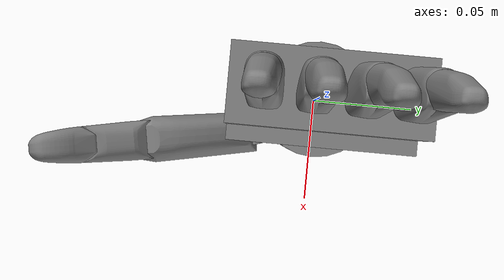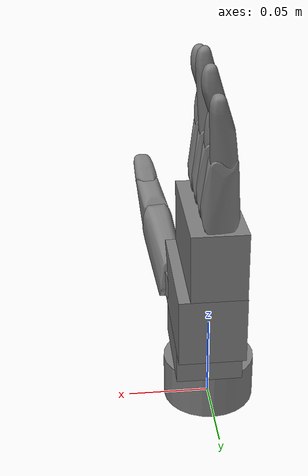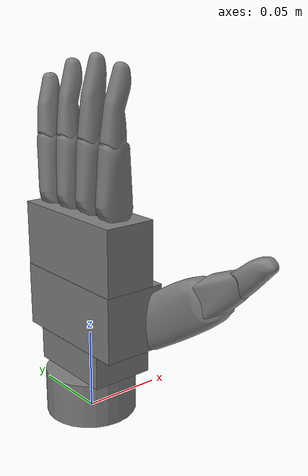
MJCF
<mujoco model="inspire_hand_left">
  <compiler angle="radian"/>

  <default>
    <joint damping="0.2" armature="1e-4" frictionloss="0.005"/>
  </default>

  <asset>
    <mesh name="left_thumb_proximal_base" content_type="model/obj" file="meshes/collision/left_thumb_proximal_base.obj"/>
    <mesh name="left_thumb_proximal" content_type="model/obj" file="meshes/collision/left_thumb_proximal.obj"/>
    <mesh name="left_thumb_intermediate" content_type="model/obj" file="meshes/collision/left_thumb_intermediate.obj"/>
    <mesh name="left_thumb_distal" content_type="model/obj" file="meshes/collision/left_thumb_distal.obj"/>
    <mesh name="left_index_proximal" content_type="model/obj" file="meshes/collision/left_index_proximal.obj"/>
    <mesh name="left_index_intermediate" content_type="model/obj" file="meshes/collision/left_index_intermediate.obj"/>
    <mesh name="left_middle_intermediate" content_type="model/obj" file="meshes/collision/left_middle_intermediate.obj"/>
    <mesh name="left_pinky_intermediate" content_type="model/obj" file="meshes/collision/left_pinky_intermediate.obj"/>
  </asset>

  <equality>
    <joint joint1="thumb_intermediate_joint" joint2="thumb_proximal_pitch_joint" polycoef="0 1.334 0 0 0"/>
    <joint joint1="thumb_distal_joint" joint2="thumb_proximal_pitch_joint" polycoef="0 0.667 0 0 0"/>
    <joint joint1="index_intermediate_joint" joint2="index_proximal_joint" polycoef="-0.04545 1.06399 0 0 0"/>
    <joint joint1="middle_intermediate_joint" joint2="middle_proximal_joint" polycoef="-0.04545 1.06399 0 0 0"/>
    <joint joint1="ring_intermediate_joint" joint2="ring_proximal_joint" polycoef="-0.04545 1.06399 0 0 0"/>
    <joint joint1="pinky_intermediate_joint" joint2="pinky_proximal_joint" polycoef="-0.04545 1.06399 0 0 0"/>
  </equality>

  <worldbody>
    <geom size="0.028 0.0139" pos="0 3.64411e-10 0.0136" quat="1.32679e-06 -4.1794e-12 -3.15e-06 1" type="cylinder"/>
    <geom size="0.01955 0.0101 0.0287" pos="0.0032 -7.47328e-09 0.038" quat="9.38186e-07 -9.38186e-07 -0.707107 0.707107" type="box"/>
    <geom size="0.01955 0.02 0.0407" pos="0.0032 -6.66408e-09 0.0682" quat="9.38186e-07 -9.38186e-07 -0.707107 0.707107" type="box"/>
    <geom size="0.0161 0.02 0.0407" pos="0 2.89653e-09 0.1081" quat="9.38186e-07 -9.38186e-07 -0.707107 0.707107" type="box"/>
    <geom size="0.00625 0.00555 0.00445" pos="0.00160008 0.0309 0.134" quat="9.38186e-07 -9.38186e-07 -0.707107 0.707107" type="box"/>
    <geom size="0.00625 0.00555 0.00445" pos="0.00160003 0.0118 0.134" quat="9.38186e-07 -9.38186e-07 -0.707107 0.707107" type="box"/>
    <geom size="0.00625 0.00555 0.00445" pos="0.00159998 -0.007 0.134" quat="9.38186e-07 -9.38186e-07 -0.707107 0.707107" type="box"/>
    <geom size="0.00625 0.00555 0.00445" pos="0.00159993 -0.0262 0.134" quat="9.38186e-07 -9.38186e-07 -0.707107 0.707107" type="box"/>
    <body name="thumb_proximal_base" pos="0.0169599 -0.02045 0.0691" quat="-0.707107 -1.2892e-06 1.30815e-06 0.707106">
      <inertial pos="0.0048817 0.0009382 -0.00722" quat="0.408023 0.323596 0.515015 0.680854" mass="0.0018869" diaginertia="8.66026e-08 6.8732e-08 4.94194e-08"/>
      <joint name="thumb_proximal_yaw_joint" pos="0 0 0" axis="0 0 1" range="0 1.308" actuatorfrcrange="-1 1"/>
      <geom type="mesh" mesh="left_thumb_proximal_base"/>
      <body name="thumb_proximal" pos="0.0099867 0.0098242 -0.0089" quat="0.704571 -0.704573 -0.0598169 0.0598167">
        <inertial pos="0.021932 -0.012785 -0.0080386" quat="0.254474 0.660716 -0.251893 0.659733" mass="0.0066075" diaginertia="2.78601e-06 2.43933e-06 8.64566e-07"/>
        <joint name="thumb_proximal_pitch_joint" pos="0 0 0" axis="0 0 -1" range="0 0.6" actuatorfrcrange="-1 1"/>
        <geom type="mesh" mesh="left_thumb_proximal"/>
        <body name="thumb_intermediate" pos="0.04407 -0.034553 -0.0008">
          <inertial pos="0.0095544 0.0016282 -0.0071997" quat="0.307389 0.636718 -0.307548 0.636802" mass="0.0037847" diaginertia="4.6531e-07 4.48089e-07 2.45661e-07"/>
          <joint name="thumb_intermediate_joint" pos="0 0 0" axis="0 0 -1" range="0 0.8" actuatorfrcrange="-1 1"/>
          <geom type="mesh" mesh="left_thumb_intermediate"/>
          <body name="thumb_distal" pos="0.020248 -0.010156 -0.0012">
            <inertial pos="0.0092888 -0.0049529 -0.0060033" quat="0.266294 0.655967 -0.262806 0.655537" mass="0.0033441" diaginertia="2.0026e-07 1.95247e-07 8.1593e-08"/>
            <joint name="thumb_distal_joint" pos="0 0 0" axis="0 0 -1" range="0 0.4" actuatorfrcrange="-1 1"/>
            <geom type="mesh" mesh="left_thumb_distal"/>
          </body>
        </body>
      </body>
    </body>
    <body name="index_proximal" pos="-0.000285416 -0.032268 0.13653" quat="9.21669e-07 -9.54417e-07 -0.71934 0.694658">
      <inertial pos="0.0012259 -0.011942 -0.0060001" quat="0.49121 0.50867 -0.491172 0.508643" mass="0.0042403" diaginertia="6.9398e-07 6.62871e-07 2.10909e-07"/>
      <joint name="index_proximal_joint" pos="0 0 0" axis="0 0 -1" range="0 1.47" actuatorfrcrange="-1 1"/>
      <geom type="mesh" mesh="left_index_proximal"/>
      <body name="index_intermediate" pos="-0.0026138 -0.032026 -0.001">
        <inertial pos="0.0019697 -0.019589 -0.005" quat="0.531152 0.466773 -0.531153 0.466773" mass="0.0045683" diaginertia="7.8179e-07 7.72465e-07 8.47212e-08"/>
        <joint name="index_intermediate_joint" pos="0 0 0" axis="0 0 -1" range="-0.04545 1.56" actuatorfrcrange="-1 1"/>
        <geom type="mesh" mesh="left_index_intermediate"/>
      </body>
    </body>
    <body name="middle_proximal" pos="-0.000285364 -0.01295 0.1371" quat="9.38186e-07 -9.38186e-07 -0.707107 0.707107">
      <inertial pos="0.001297 -0.011934 -0.0060001" quat="0.489693 0.510131 -0.489653 0.510105" mass="0.0042403" diaginertia="6.9397e-07 6.62865e-07 2.10915e-07"/>
      <joint name="middle_proximal_joint" pos="0 0 0" axis="0 0 -1" range="0 1.47" actuatorfrcrange="-1 1"/>
      <geom type="mesh" mesh="left_index_proximal"/>
      <body name="middle_intermediate" pos="-0.0024229 -0.032041 -0.001">
        <inertial pos="0.001921 -0.020796 -0.005" quat="0.531627 0.466148 -0.531705 0.466229" mass="0.0050396" diaginertia="9.8384e-07 9.73279e-07 9.14014e-08"/>
        <joint name="middle_intermediate_joint" pos="0 0 0" axis="0 0 -1" range="-0.04545 1.56" actuatorfrcrange="-1 1"/>
        <geom type="mesh" mesh="left_middle_intermediate"/>
      </body>
    </body>
    <body name="ring_proximal" pos="-0.000285313 0.0062872 0.13691" quat="9.62423e-07 -9.13305e-07 -0.688355 0.725374">
      <inertial pos="0.001297 -0.011934 -0.0060002" quat="0.489691 0.510129 -0.489654 0.510107" mass="0.0042403" diaginertia="6.9397e-07 6.62865e-07 2.10915e-07"/>
      <joint name="ring_proximal_joint" pos="0 0 0" axis="0 0 -1" range="0 1.47" actuatorfrcrange="-1 1"/>
      <geom type="mesh" mesh="left_index_proximal"/>
      <body name="ring_intermediate" pos="-0.0024229 -0.032041 -0.001">
        <inertial pos="0.0021753 -0.019567 -0.005" quat="0.528695 0.469554 -0.528695 0.469554" mass="0.0045683" diaginertia="7.8177e-07 7.72448e-07 8.4722e-08"/>
        <joint name="ring_intermediate_joint" pos="0 0 0" axis="0 0 -1" range="-0.04545 1.56" actuatorfrcrange="-1 1"/>
        <geom type="mesh" mesh="left_index_intermediate"/>
      </body>
    </body>
    <body name="pinky_proximal" pos="-0.000285262 0.025488 0.13571" quat="9.86001e-07 -8.87799e-07 -0.669131 0.743145">
      <inertial pos="0.001297 -0.011934 -0.0060001" quat="0.489693 0.51013 -0.489653 0.510106" mass="0.0042403" diaginertia="6.9397e-07 6.62865e-07 2.10915e-07"/>
      <joint name="pinky_proximal_joint" pos="0 0 0" axis="0 0 -1" range="0 1.47" actuatorfrcrange="-1 1"/>
      <geom type="mesh" mesh="left_index_proximal"/>
      <body name="pinky_intermediate" pos="-0.0024229 -0.032041 -0.001">
        <inertial pos="0.0024748 -0.016203 -0.0050031" quat="0.528862 0.47398 -0.524799 0.469291" mass="0.0035996" diaginertia="4.4867e-07 4.43723e-07 6.56538e-08"/>
        <joint name="pinky_intermediate_joint" pos="0 0 0" axis="0 0 -1" range="-0.04545 1.56" actuatorfrcrange="-1 1"/>
        <geom type="mesh" mesh="left_pinky_intermediate"/>
      </body>
    </body>
  </worldbody>
</mujoco>
